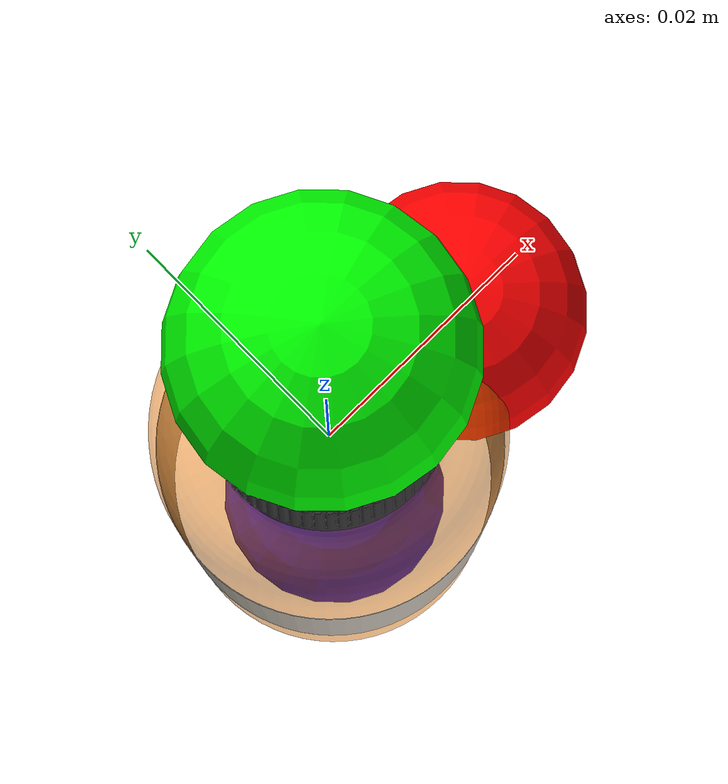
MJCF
<mujoco model="serum_bottle">
    <size njmax="500" nconmax="100" />
    <asset>
      <mesh name="label" file="label.obj" scale="1 1 1" />
      <mesh name="body" file="body.obj" scale="1 1 1" />
      <mesh name="neck" file="neck.obj" scale="1 1 1" />
      <mesh name="head" file="head.obj" scale="1 1 1" />

      <texture name="label_tex" type="2d" file="label.png" />
      <material name="label_mat" texture="label_tex" specular="0.1" shininess="0.1" />
    </asset>

  <worldbody>
    <body>
      <body name="object" pos="0 0 0" quat="1 0 0 0">
        <inertial pos="0 0 0" mass="0.5" diaginertia="1e-3 1e-3 1e-3" />

        <geom type="mesh" mesh="label" material="label_mat" friction="0.6 0.005 0.001" quat="1 0 0 0" group="1" contype="1" conaffinity="1" pos="0 0 0"/>

        <geom type="mesh" mesh="body" rgba="1 0.5 0 0.5" friction="0.6 0.005 0.001" quat="1 0 0 0" group="1" contype="1" conaffinity="1" pos="0 0 0"/>

        <geom type="mesh" mesh="neck" rgba="0.2 0.2 0.2 1" friction="0.6 0.005 0.001" quat="1 0 0 0" group="1" contype="1" conaffinity="1" pos="0 0 0"/>

        <geom type="mesh" mesh="head" rgba="0.2 0.2 0.2 1" friction="0.6 0.005 0.001" quat="1 0 0 0" group="1" contype="1" conaffinity="1" pos="0 0 0"/>

        <site name="bottle_site" type="cylinder" size="0.01365 0.04230" pos="0 0 0" quat="1 0 0 0" rgba="1 0 0 0"/>
        <site name="contact_site" type="cylinder" size="0.01365 0.04230" pos="0 0 0" quat="1 0 0 0" rgba="0 0 1 0" group="0"/>
      </body>
      <site rgba="0 0 1 1" size="0.01" pos="0 0 -0.04230" quat="1 0 0 0" name="bottom_site"/>
      <site rgba="0 1 0 1" size="0.01" pos="0 0 0.04230" quat="1 0 0 0" name="top_site"/>
      <site rgba="1 0 0 1" size="0.01" pos="0.01365 0 0" quat="1 0 0 0" name="horizontal_radius_site"/>
    </body>
  </worldbody>
</mujoco>
